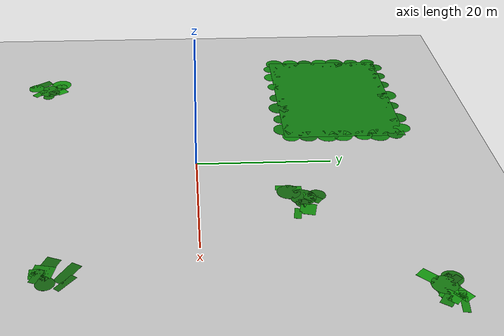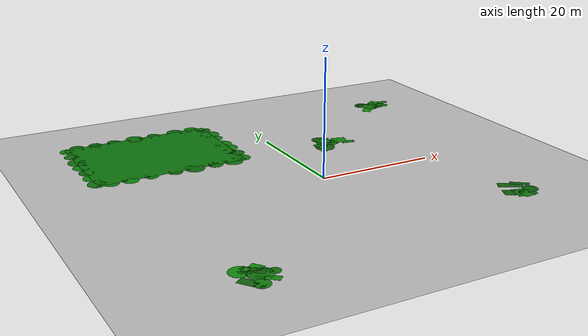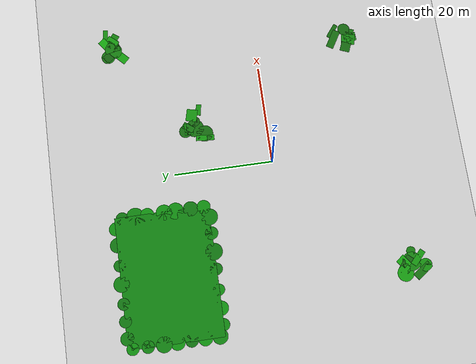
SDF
<sdf version="1.8">
 <world name="semantic_segmentation_world">
  <model name="ground_plane">
   <static>true</static>
   <link name="link">
    <collision name="collision">
     <geometry><plane><normal>0 0 1</normal><size>120 120</size></plane></geometry>
     <surface><friction><ode><mu>100</mu><mu2>50</mu2></ode></friction></surface>
    </collision>
    <visual name="visual">
     <geometry><plane><normal>0 0 1</normal><size>100 100</size></plane></geometry>
     <material>
      <ambient>0.8 0.8 0.8 1</ambient>
      <diffuse>0.8 0.8 0.8 1</diffuse>
      <specular>0.8 0.8 0.8 1</specular>
     </material>
    </visual>
   </link>
  </model>
  <model name="irregular_grass_islands">
   <static>true</static>
   <link name="grass_visuals">
    <visual name="grass_09">
     <pose>6.959 12.889 0.008 0 0 -1.65070</pose>
     <geometry><box><size>3.745 1.120 0.016</size></box></geometry>
     <material>
      <ambient>0.06 0.479 0.05 1</ambient>
      <diffuse>0.08 0.579 0.06 1</diffuse>
      <specular>0.01 0.02 0.01 1</specular>
     </material>
    </visual>
    <visual name="grass_10">
     <pose>9.573 16.042 0.008 0 0 -2.21500</pose>
     <geometry><box><size>2.462 1.315 0.016</size></box></geometry>
     <material>
      <ambient>0.06 0.353 0.05 1</ambient>
      <diffuse>0.08 0.453 0.06 1</diffuse>
      <specular>0.01 0.02 0.01 1</specular>
     </material>
    </visual>
    <visual name="grass_11">
     <pose>13.031 13.539 0.008 0 0 -0.17223</pose>
     <geometry><box><size>2.315 1.025 0.016</size></box></geometry>
     <material>
      <ambient>0.06 0.447 0.05 1</ambient>
      <diffuse>0.08 0.547 0.06 1</diffuse>
      <specular>0.01 0.02 0.01 1</specular>
     </material>
    </visual>
    <visual name="grass_12">
     <pose>8.810 16.691 0.008 0 0 1.14218</pose>
     <geometry><cylinder><radius>1.292</radius><length>0.016</length></cylinder></geometry>
     <material>
      <ambient>0.06 0.310 0.05 1</ambient>
      <diffuse>0.08 0.410 0.06 1</diffuse>
      <specular>0.01 0.02 0.01 1</specular>
     </material>
    </visual>
    <visual name="grass_13">
     <pose>10.657 14.502 0.008 0 0 2.24129</pose>
     <geometry><cylinder><radius>0.988</radius><length>0.016</length></cylinder></geometry>
     <material>
      <ambient>0.06 0.284 0.05 1</ambient>
      <diffuse>0.08 0.384 0.06 1</diffuse>
      <specular>0.01 0.02 0.01 1</specular>
     </material>
    </visual>
    <visual name="grass_14">
     <pose>9.250 14.731 0.008 0 0 -0.44316</pose>
     <geometry><cylinder><radius>1.838</radius><length>0.016</length></cylinder></geometry>
     <material>
      <ambient>0.06 0.330 0.05 1</ambient>
      <diffuse>0.08 0.430 0.06 1</diffuse>
      <specular>0.01 0.02 0.01 1</specular>
     </material>
    </visual>
    <visual name="grass_15">
     <pose>12.058 15.052 0.008 0 0 1.33181</pose>
     <geometry><box><size>2.199 2.498 0.016</size></box></geometry>
     <material>
      <ambient>0.06 0.468 0.05 1</ambient>
      <diffuse>0.08 0.568 0.06 1</diffuse>
      <specular>0.01 0.02 0.01 1</specular>
     </material>
    </visual>
    <visual name="grass_16">
     <pose>9.238 15.842 0.008 0 0 1.57316</pose>
     <geometry><box><size>1.994 2.413 0.016</size></box></geometry>
     <material>
      <ambient>0.06 0.503 0.05 1</ambient>
      <diffuse>0.08 0.603 0.06 1</diffuse>
      <specular>0.01 0.02 0.01 1</specular>
     </material>
    </visual>
    <visual name="grass_17">
     <pose>7.888 12.856 0.008 0 0 -0.77799</pose>
     <geometry><cylinder><radius>1.696</radius><length>0.016</length></cylinder></geometry>
     <material>
      <ambient>0.06 0.311 0.05 1</ambient>
      <diffuse>0.08 0.411 0.06 1</diffuse>
      <specular>0.01 0.02 0.01 1</specular>
     </material>
    </visual>
    <visual name="grass_18">
     <pose>23.899 -19.577 0.008 0 0 1.35939</pose>
     <geometry><box><size>2.770 2.201 0.016</size></box></geometry>
     <material>
      <ambient>0.06 0.415 0.05 1</ambient>
      <diffuse>0.08 0.515 0.06 1</diffuse>
      <specular>0.01 0.02 0.01 1</specular>
     </material>
    </visual>
    <visual name="grass_19">
     <pose>22.307 -18.804 0.008 0 0 -1.95655</pose>
     <geometry><box><size>1.990 2.027 0.016</size></box></geometry>
     <material>
      <ambient>0.06 0.302 0.05 1</ambient>
      <diffuse>0.08 0.402 0.06 1</diffuse>
      <specular>0.01 0.02 0.01 1</specular>
     </material>
    </visual>
    <visual name="grass_20">
     <pose>24.357 -16.492 0.008 0 0 2.60232</pose>
     <geometry><box><size>3.991 1.539 0.016</size></box></geometry>
     <material>
      <ambient>0.06 0.317 0.05 1</ambient>
      <diffuse>0.08 0.417 0.06 1</diffuse>
      <specular>0.01 0.02 0.01 1</specular>
     </material>
    </visual>
    <visual name="grass_21">
     <pose>26.213 -19.038 0.008 0 0 1.91586</pose>
     <geometry><cylinder><radius>1.253</radius><length>0.016</length></cylinder></geometry>
     <material>
      <ambient>0.06 0.297 0.05 1</ambient>
      <diffuse>0.08 0.397 0.06 1</diffuse>
      <specular>0.01 0.02 0.01 1</specular>
     </material>
    </visual>
    <visual name="grass_22">
     <pose>26.148 -16.566 0.008 0 0 -0.67029</pose>
     <geometry><box><size>3.163 0.923 0.016</size></box></geometry>
     <material>
      <ambient>0.06 0.306 0.05 1</ambient>
      <diffuse>0.08 0.406 0.06 1</diffuse>
      <specular>0.01 0.02 0.01 1</specular>
     </material>
    </visual>
    <visual name="grass_23">
     <pose>25.039 -19.564 0.008 0 0 1.00718</pose>
     <geometry><box><size>1.571 0.881 0.016</size></box></geometry>
     <material>
      <ambient>0.06 0.340 0.05 1</ambient>
      <diffuse>0.08 0.440 0.06 1</diffuse>
      <specular>0.01 0.02 0.01 1</specular>
     </material>
    </visual>
    <visual name="grass_24">
     <pose>24.330 -20.227 0.008 0 0 -3.09723</pose>
     <geometry><box><size>1.868 2.130 0.016</size></box></geometry>
     <material>
      <ambient>0.06 0.416 0.05 1</ambient>
      <diffuse>0.08 0.516 0.06 1</diffuse>
      <specular>0.01 0.02 0.01 1</specular>
     </material>
    </visual>
    <visual name="grass_25">
     <pose>24.751 -20.231 0.008 0 0 -0.34963</pose>
     <geometry><box><size>2.650 1.015 0.016</size></box></geometry>
     <material>
      <ambient>0.06 0.353 0.05 1</ambient>
      <diffuse>0.08 0.453 0.06 1</diffuse>
      <specular>0.01 0.02 0.01 1</specular>
     </material>
    </visual>
    <visual name="grass_26">
     <pose>24.307 -19.712 0.008 0 0 -1.87363</pose>
     <geometry><cylinder><radius>0.930</radius><length>0.016</length></cylinder></geometry>
     <material>
      <ambient>0.06 0.439 0.05 1</ambient>
      <diffuse>0.08 0.539 0.06 1</diffuse>
      <specular>0.01 0.02 0.01 1</specular>
     </material>
    </visual>
    <visual name="grass_27">
     <pose>-24.176 -23.088 0.008 0 0 -0.70839</pose>
     <geometry><box><size>3.488 1.462 0.016</size></box></geometry>
     <material>
      <ambient>0.06 0.287 0.05 1</ambient>
      <diffuse>0.08 0.387 0.06 1</diffuse>
      <specular>0.01 0.02 0.01 1</specular>
     </material>
    </visual>
    <visual name="grass_28">
     <pose>-24.878 -26.929 0.008 0 0 -1.34440</pose>
     <geometry><cylinder><radius>1.270</radius><length>0.016</length></cylinder></geometry>
     <material>
      <ambient>0.06 0.450 0.05 1</ambient>
      <diffuse>0.08 0.550 0.06 1</diffuse>
      <specular>0.01 0.02 0.01 1</specular>
     </material>
    </visual>
    <visual name="grass_29">
     <pose>-23.298 -25.721 0.008 0 0 -0.73721</pose>
     <geometry><box><size>3.399 1.226 0.016</size></box></geometry>
     <material>
      <ambient>0.06 0.476 0.05 1</ambient>
      <diffuse>0.08 0.576 0.06 1</diffuse>
      <specular>0.01 0.02 0.01 1</specular>
     </material>
    </visual>
    <visual name="grass_30">
     <pose>-25.276 -22.737 0.008 0 0 -0.59421</pose>
     <geometry><cylinder><radius>0.992</radius><length>0.016</length></cylinder></geometry>
     <material>
      <ambient>0.06 0.445 0.05 1</ambient>
      <diffuse>0.08 0.545 0.06 1</diffuse>
      <specular>0.01 0.02 0.01 1</specular>
     </material>
    </visual>
    <visual name="grass_31">
     <pose>-23.851 -24.369 0.008 0 0 2.81046</pose>
     <geometry><cylinder><radius>1.874</radius><length>0.016</length></cylinder></geometry>
     <material>
      <ambient>0.06 0.405 0.05 1</ambient>
      <diffuse>0.08 0.505 0.06 1</diffuse>
      <specular>0.01 0.02 0.01 1</specular>
     </material>
    </visual>
    <visual name="grass_32">
     <pose>-21.796 -24.499 0.008 0 0 -2.38540</pose>
     <geometry><cylinder><radius>0.890</radius><length>0.016</length></cylinder></geometry>
     <material>
      <ambient>0.06 0.368 0.05 1</ambient>
      <diffuse>0.08 0.468 0.06 1</diffuse>
      <specular>0.01 0.02 0.01 1</specular>
     </material>
    </visual>
    <visual name="grass_33">
     <pose>-23.858 -22.764 0.008 0 0 2.21026</pose>
     <geometry><box><size>1.904 2.391 0.016</size></box></geometry>
     <material>
      <ambient>0.06 0.524 0.05 1</ambient>
      <diffuse>0.08 0.624 0.06 1</diffuse>
      <specular>0.01 0.02 0.01 1</specular>
     </material>
    </visual>
    <visual name="grass_34">
     <pose>-25.906 -26.242 0.008 0 0 -0.94411</pose>
     <geometry><box><size>3.865 1.546 0.016</size></box></geometry>
     <material>
      <ambient>0.06 0.331 0.05 1</ambient>
      <diffuse>0.08 0.431 0.06 1</diffuse>
      <specular>0.01 0.02 0.01 1</specular>
     </material>
    </visual>
    <visual name="grass_35">
     <pose>-25.988 -22.755 0.008 0 0 2.14021</pose>
     <geometry><cylinder><radius>1.631</radius><length>0.016</length></cylinder></geometry>
     <material>
      <ambient>0.06 0.497 0.05 1</ambient>
      <diffuse>0.08 0.597 0.06 1</diffuse>
      <specular>0.01 0.02 0.01 1</specular>
     </material>
    </visual>
    <visual name="grass_36">
     <pose>30.274 29.719 0.008 0 0 0.86283</pose>
     <geometry><box><size>2.531 1.833 0.016</size></box></geometry>
     <material>
      <ambient>0.06 0.494 0.05 1</ambient>
      <diffuse>0.08 0.594 0.06 1</diffuse>
      <specular>0.01 0.02 0.01 1</specular>
     </material>
    </visual>
    <visual name="grass_37">
     <pose>28.232 29.472 0.008 0 0 -0.63979</pose>
     <geometry><cylinder><radius>1.671</radius><length>0.016</length></cylinder></geometry>
     <material>
      <ambient>0.06 0.388 0.05 1</ambient>
      <diffuse>0.08 0.488 0.06 1</diffuse>
      <specular>0.01 0.02 0.01 1</specular>
     </material>
    </visual>
    <visual name="grass_38">
     <pose>26.556 27.856 0.008 0 0 2.34928</pose>
     <geometry><box><size>1.721 2.393 0.016</size></box></geometry>
     <material>
      <ambient>0.06 0.512 0.05 1</ambient>
      <diffuse>0.08 0.612 0.06 1</diffuse>
      <specular>0.01 0.02 0.01 1</specular>
     </material>
    </visual>
    <visual name="grass_39">
     <pose>31.224 31.026 0.008 0 0 -0.13342</pose>
     <geometry><box><size>3.854 0.950 0.016</size></box></geometry>
     <material>
      <ambient>0.06 0.442 0.05 1</ambient>
      <diffuse>0.08 0.542 0.06 1</diffuse>
      <specular>0.01 0.02 0.01 1</specular>
     </material>
    </visual>
    <visual name="grass_40">
     <pose>29.194 29.804 0.008 0 0 -1.40929</pose>
     <geometry><box><size>3.137 2.303 0.016</size></box></geometry>
     <material>
      <ambient>0.06 0.375 0.05 1</ambient>
      <diffuse>0.08 0.475 0.06 1</diffuse>
      <specular>0.01 0.02 0.01 1</specular>
     </material>
    </visual>
    <visual name="grass_41">
     <pose>26.957 30.773 0.008 0 0 2.25343</pose>
     <geometry><box><size>1.647 1.874 0.016</size></box></geometry>
     <material>
      <ambient>0.06 0.282 0.05 1</ambient>
      <diffuse>0.08 0.382 0.06 1</diffuse>
      <specular>0.01 0.02 0.01 1</specular>
     </material>
    </visual>
    <visual name="grass_42">
     <pose>30.120 31.298 0.008 0 0 2.20522</pose>
     <geometry><box><size>1.611 2.055 0.016</size></box></geometry>
     <material>
      <ambient>0.06 0.547 0.05 1</ambient>
      <diffuse>0.08 0.647 0.06 1</diffuse>
      <specular>0.01 0.02 0.01 1</specular>
     </material>
    </visual>
    <visual name="grass_43">
     <pose>27.077 30.730 0.008 0 0 2.52383</pose>
     <geometry><cylinder><radius>1.416</radius><length>0.016</length></cylinder></geometry>
     <material>
      <ambient>0.06 0.346 0.05 1</ambient>
      <diffuse>0.08 0.446 0.06 1</diffuse>
      <specular>0.01 0.02 0.01 1</specular>
     </material>
    </visual>
    <visual name="grass_44">
     <pose>30.976 29.215 0.008 0 0 -2.19709</pose>
     <geometry><box><size>1.557 1.984 0.016</size></box></geometry>
     <material>
      <ambient>0.06 0.401 0.05 1</ambient>
      <diffuse>0.08 0.501 0.06 1</diffuse>
      <specular>0.01 0.02 0.01 1</specular>
     </material>
    </visual>
    <visual name="park_lawn_base">
     <pose>-20 23.5 0.008 0 0 0</pose>
     <geometry><box><size>26 19 0.016</size></box></geometry>
     <material>
      <ambient>0.04 0.38 0.04 1</ambient>
      <diffuse>0.06 0.50 0.06 1</diffuse>
      <specular>0.01 0.01 0.01 1</specular>
     </material>
    </visual>
    <visual name="park_edge_00">
     <pose>-32.800 14.993 0.008 0 0 0</pose>
     <geometry><cylinder><radius>1.518</radius><length>0.016</length></cylinder></geometry>
     <material>
      <ambient>0.04 0.425 0.04 1</ambient>
      <diffuse>0.06 0.505 0.06 1</diffuse>
      <specular>0.01 0.01 0.01 1</specular>
     </material>
    </visual>
    <visual name="park_edge_01">
     <pose>-7.200 15.025 0.008 0 0 0</pose>
     <geometry><cylinder><radius>1.371</radius><length>0.016</length></cylinder></geometry>
     <material>
      <ambient>0.04 0.467 0.04 1</ambient>
      <diffuse>0.06 0.547 0.06 1</diffuse>
      <specular>0.01 0.01 0.01 1</specular>
     </material>
    </visual>
    <visual name="park_edge_02">
     <pose>-32.800 17.884 0.008 0 0 0</pose>
     <geometry><cylinder><radius>1.420</radius><length>0.016</length></cylinder></geometry>
     <material>
      <ambient>0.04 0.477 0.04 1</ambient>
      <diffuse>0.06 0.557 0.06 1</diffuse>
      <specular>0.01 0.01 0.01 1</specular>
     </material>
    </visual>
    <visual name="park_edge_03">
     <pose>-7.200 17.671 0.008 0 0 0</pose>
     <geometry><cylinder><radius>1.488</radius><length>0.016</length></cylinder></geometry>
     <material>
      <ambient>0.04 0.372 0.04 1</ambient>
      <diffuse>0.06 0.452 0.06 1</diffuse>
      <specular>0.01 0.01 0.01 1</specular>
     </material>
    </visual>
    <visual name="park_edge_04">
     <pose>-32.800 20.537 0.008 0 0 0</pose>
     <geometry><cylinder><radius>1.286</radius><length>0.016</length></cylinder></geometry>
     <material>
      <ambient>0.04 0.362 0.04 1</ambient>
      <diffuse>0.06 0.442 0.06 1</diffuse>
      <specular>0.01 0.01 0.01 1</specular>
     </material>
    </visual>
    <visual name="park_edge_05">
     <pose>-7.200 20.739 0.008 0 0 0</pose>
     <geometry><cylinder><radius>1.658</radius><length>0.016</length></cylinder></geometry>
     <material>
      <ambient>0.04 0.458 0.04 1</ambient>
      <diffuse>0.06 0.538 0.06 1</diffuse>
      <specular>0.01 0.01 0.01 1</specular>
     </material>
    </visual>
    <visual name="park_edge_06">
     <pose>-32.800 23.313 0.008 0 0 0</pose>
     <geometry><cylinder><radius>1.480</radius><length>0.016</length></cylinder></geometry>
     <material>
      <ambient>0.04 0.474 0.04 1</ambient>
      <diffuse>0.06 0.554 0.06 1</diffuse>
      <specular>0.01 0.01 0.01 1</specular>
     </material>
    </visual>
    <visual name="park_edge_07">
     <pose>-7.200 23.071 0.008 0 0 0</pose>
     <geometry><cylinder><radius>1.579</radius><length>0.016</length></cylinder></geometry>
     <material>
      <ambient>0.04 0.468 0.04 1</ambient>
      <diffuse>0.06 0.548 0.06 1</diffuse>
      <specular>0.01 0.01 0.01 1</specular>
     </material>
    </visual>
    <visual name="park_edge_08">
     <pose>-32.800 25.930 0.008 0 0 0</pose>
     <geometry><cylinder><radius>1.562</radius><length>0.016</length></cylinder></geometry>
     <material>
      <ambient>0.04 0.408 0.04 1</ambient>
      <diffuse>0.06 0.488 0.06 1</diffuse>
      <specular>0.01 0.01 0.01 1</specular>
     </material>
    </visual>
    <visual name="park_edge_09">
     <pose>-7.200 26.405 0.008 0 0 0</pose>
     <geometry><cylinder><radius>1.375</radius><length>0.016</length></cylinder></geometry>
     <material>
      <ambient>0.04 0.478 0.04 1</ambient>
      <diffuse>0.06 0.558 0.06 1</diffuse>
      <specular>0.01 0.01 0.01 1</specular>
     </material>
    </visual>
    <visual name="park_edge_10">
     <pose>-32.800 29.034 0.008 0 0 0</pose>
     <geometry><cylinder><radius>1.247</radius><length>0.016</length></cylinder></geometry>
     <material>
      <ambient>0.04 0.418 0.04 1</ambient>
      <diffuse>0.06 0.498 0.06 1</diffuse>
      <specular>0.01 0.01 0.01 1</specular>
     </material>
    </visual>
    <visual name="park_edge_11">
     <pose>-7.200 28.843 0.008 0 0 0</pose>
     <geometry><cylinder><radius>1.750</radius><length>0.016</length></cylinder></geometry>
     <material>
      <ambient>0.04 0.429 0.04 1</ambient>
      <diffuse>0.06 0.509 0.06 1</diffuse>
      <specular>0.01 0.01 0.01 1</specular>
     </material>
    </visual>
    <visual name="park_edge_12">
     <pose>-32.800 32.018 0.008 0 0 0</pose>
     <geometry><cylinder><radius>1.222</radius><length>0.016</length></cylinder></geometry>
     <material>
      <ambient>0.04 0.467 0.04 1</ambient>
      <diffuse>0.06 0.547 0.06 1</diffuse>
      <specular>0.01 0.01 0.01 1</specular>
     </material>
    </visual>
    <visual name="park_edge_13">
     <pose>-7.200 31.464 0.008 0 0 0</pose>
     <geometry><cylinder><radius>1.202</radius><length>0.016</length></cylinder></geometry>
     <material>
      <ambient>0.04 0.367 0.04 1</ambient>
      <diffuse>0.06 0.447 0.06 1</diffuse>
      <specular>0.01 0.01 0.01 1</specular>
     </material>
    </visual>
    <visual name="park_edge_14">
     <pose>-30.692 14.100 0.008 0 0 0</pose>
     <geometry><cylinder><radius>1.238</radius><length>0.016</length></cylinder></geometry>
     <material>
      <ambient>0.04 0.439 0.04 1</ambient>
      <diffuse>0.06 0.519 0.06 1</diffuse>
      <specular>0.01 0.01 0.01 1</specular>
     </material>
    </visual>
    <visual name="park_edge_15">
     <pose>-30.725 32.900 0.008 0 0 0</pose>
     <geometry><cylinder><radius>1.326</radius><length>0.016</length></cylinder></geometry>
     <material>
      <ambient>0.04 0.391 0.04 1</ambient>
      <diffuse>0.06 0.471 0.06 1</diffuse>
      <specular>0.01 0.01 0.01 1</specular>
     </material>
    </visual>
    <visual name="park_edge_16">
     <pose>-27.505 14.100 0.008 0 0 0</pose>
     <geometry><cylinder><radius>1.425</radius><length>0.016</length></cylinder></geometry>
     <material>
      <ambient>0.04 0.479 0.04 1</ambient>
      <diffuse>0.06 0.559 0.06 1</diffuse>
      <specular>0.01 0.01 0.01 1</specular>
     </material>
    </visual>
    <visual name="park_edge_17">
     <pose>-27.407 32.900 0.008 0 0 0</pose>
     <geometry><cylinder><radius>1.210</radius><length>0.016</length></cylinder></geometry>
     <material>
      <ambient>0.04 0.375 0.04 1</ambient>
      <diffuse>0.06 0.455 0.06 1</diffuse>
      <specular>0.01 0.01 0.01 1</specular>
     </material>
    </visual>
    <visual name="park_edge_18">
     <pose>-23.913 14.100 0.008 0 0 0</pose>
     <geometry><cylinder><radius>1.156</radius><length>0.016</length></cylinder></geometry>
     <material>
      <ambient>0.04 0.446 0.04 1</ambient>
      <diffuse>0.06 0.526 0.06 1</diffuse>
      <specular>0.01 0.01 0.01 1</specular>
     </material>
    </visual>
    <visual name="park_edge_19">
     <pose>-24.046 32.900 0.008 0 0 0</pose>
     <geometry><cylinder><radius>1.195</radius><length>0.016</length></cylinder></geometry>
     <material>
      <ambient>0.04 0.364 0.04 1</ambient>
      <diffuse>0.06 0.444 0.06 1</diffuse>
      <specular>0.01 0.01 0.01 1</specular>
     </material>
    </visual>
    <visual name="park_edge_20">
     <pose>-19.835 14.100 0.008 0 0 0</pose>
     <geometry><cylinder><radius>1.239</radius><length>0.016</length></cylinder></geometry>
     <material>
      <ambient>0.04 0.369 0.04 1</ambient>
      <diffuse>0.06 0.449 0.06 1</diffuse>
      <specular>0.01 0.01 0.01 1</specular>
     </material>
    </visual>
    <visual name="park_edge_21">
     <pose>-20.186 32.900 0.008 0 0 0</pose>
     <geometry><cylinder><radius>1.571</radius><length>0.016</length></cylinder></geometry>
     <material>
      <ambient>0.04 0.410 0.04 1</ambient>
      <diffuse>0.06 0.490 0.06 1</diffuse>
      <specular>0.01 0.01 0.01 1</specular>
     </material>
    </visual>
    <visual name="park_edge_22">
     <pose>-16.372 14.100 0.008 0 0 0</pose>
     <geometry><cylinder><radius>1.706</radius><length>0.016</length></cylinder></geometry>
     <material>
      <ambient>0.04 0.369 0.04 1</ambient>
      <diffuse>0.06 0.449 0.06 1</diffuse>
      <specular>0.01 0.01 0.01 1</specular>
     </material>
    </visual>
    <visual name="park_edge_23">
     <pose>-16.543 32.900 0.008 0 0 0</pose>
     <geometry><cylinder><radius>1.172</radius><length>0.016</length></cylinder></geometry>
     <material>
      <ambient>0.04 0.373 0.04 1</ambient>
      <diffuse>0.06 0.453 0.06 1</diffuse>
      <specular>0.01 0.01 0.01 1</specular>
     </material>
    </visual>
    <visual name="park_edge_24">
     <pose>-12.649 14.100 0.008 0 0 0</pose>
     <geometry><cylinder><radius>1.301</radius><length>0.016</length></cylinder></geometry>
     <material>
      <ambient>0.04 0.399 0.04 1</ambient>
      <diffuse>0.06 0.479 0.06 1</diffuse>
      <specular>0.01 0.01 0.01 1</specular>
     </material>
    </visual>
    <visual name="park_edge_25">
     <pose>-12.438 32.900 0.008 0 0 0</pose>
     <geometry><cylinder><radius>1.487</radius><length>0.016</length></cylinder></geometry>
     <material>
      <ambient>0.04 0.370 0.04 1</ambient>
      <diffuse>0.06 0.450 0.06 1</diffuse>
      <specular>0.01 0.01 0.01 1</specular>
     </material>
    </visual>
    <visual name="park_edge_26">
     <pose>-9.362 14.100 0.008 0 0 0</pose>
     <geometry><cylinder><radius>1.652</radius><length>0.016</length></cylinder></geometry>
     <material>
      <ambient>0.04 0.403 0.04 1</ambient>
      <diffuse>0.06 0.483 0.06 1</diffuse>
      <specular>0.01 0.01 0.01 1</specular>
     </material>
    </visual>
    <visual name="park_edge_27">
     <pose>-9.170 32.900 0.008 0 0 0</pose>
     <geometry><cylinder><radius>1.359</radius><length>0.016</length></cylinder></geometry>
     <material>
      <ambient>0.04 0.465 0.04 1</ambient>
      <diffuse>0.06 0.545 0.06 1</diffuse>
      <specular>0.01 0.01 0.01 1</specular>
     </material>
    </visual>
   </link>
   <plugin filename="ignition-gazebo-label-system" name="ignition::gazebo::systems::Label">
    <label>8</label>
   </plugin>
  </model>
 </world>
</sdf>
